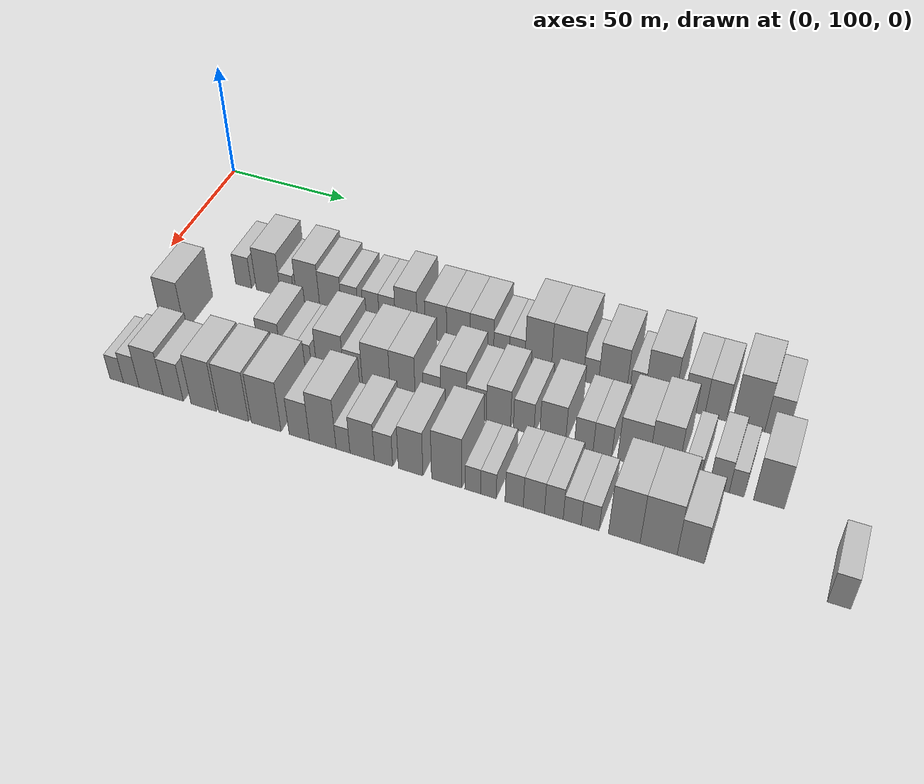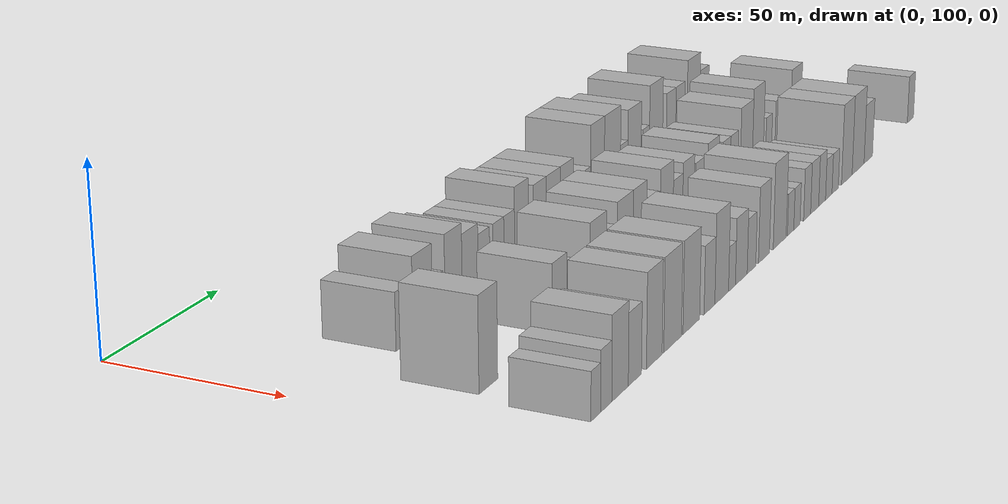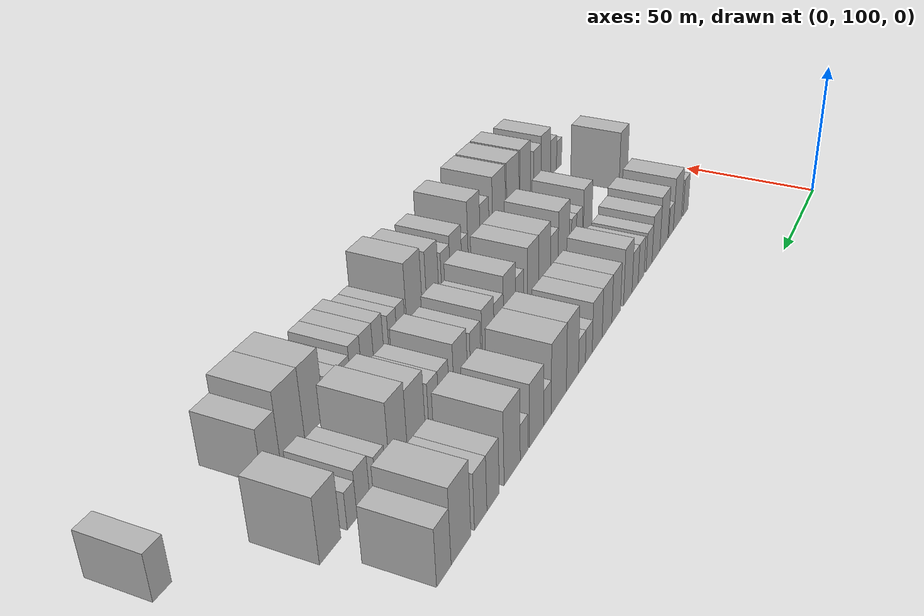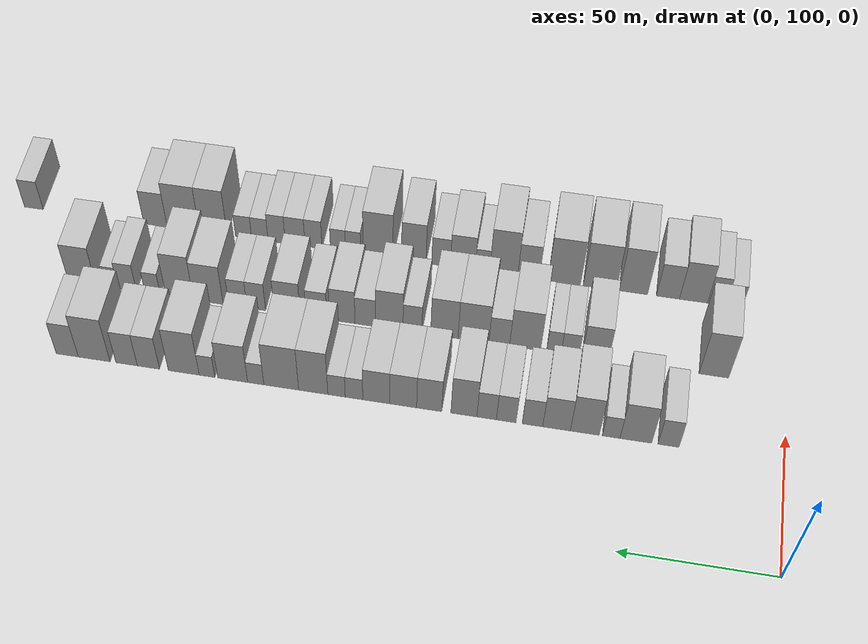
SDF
<sdf version="1.6">
 <world name="default">
  <model name="building_47">
   <static>1</static>
   <pose>50.0000 136.7579 0 0.000000 0.000000 0.000000</pose>
   <link name="link">
    <pose>0 0 7.50 0 0 0</pose>
    <collision name="collision"><geometry><box><size>20.0000 6.6616 15.0000</size></box></geometry></collision>
    <visual name="visual">
     <cast_shadows>0</cast_shadows>
     <geometry><box><size>20.0000 6.6616 15.0000</size></box></geometry>
     <material>
      <script>
       <uri>model://HANNAS_wall/materials/scripts</uri>
       <uri>model://HANNAS_wall/materials/textures</uri>
       <name>vrc/HANNAS_wall</name>
      </script>
     </material>
    </visual>
   </link>
  </model>
  <model name="building_48">
   <static>1</static>
   <pose>50.0000 147.1466 0 0.000000 0.000000 0.000000</pose>
   <link name="link">
    <pose>0 0 10.50 0 0 0</pose>
    <collision name="collision"><geometry><box><size>20.0000 10.1159 21.0000</size></box></geometry></collision>
    <visual name="visual">
     <cast_shadows>0</cast_shadows>
     <geometry><box><size>20.0000 10.1159 21.0000</size></box></geometry>
     <material>
      <script>
       <uri>model://HANNAS_wall/materials/scripts</uri>
       <uri>model://HANNAS_wall/materials/textures</uri>
       <name>vrc/HANNAS_wall</name>
      </script>
     </material>
    </visual>
   </link>
  </model>
  <model name="building_49">
   <static>1</static>
   <pose>50.0000 155.0259 0 0.000000 0.000000 0.000000</pose>
   <link name="link">
    <pose>0 0 6.00 0 0 0</pose>
    <collision name="collision"><geometry><box><size>20.0000 5.6427 12.0000</size></box></geometry></collision>
    <visual name="visual">
     <cast_shadows>0</cast_shadows>
     <geometry><box><size>20.0000 5.6427 12.0000</size></box></geometry>
     <material>
      <script>
       <uri>model://HANNAS_wall/materials/scripts</uri>
       <uri>model://HANNAS_wall/materials/textures</uri>
       <name>vrc/HANNAS_wall</name>
      </script>
     </material>
    </visual>
   </link>
  </model>
  <model name="building_50">
   <static>1</static>
   <pose>50.0000 163.5121 0 0.000000 0.000000 0.000000</pose>
   <link name="link">
    <pose>0 0 10.50 0 0 0</pose>
    <collision name="collision"><geometry><box><size>20.0000 9.3296 21.0000</size></box></geometry></collision>
    <visual name="visual">
     <cast_shadows>0</cast_shadows>
     <geometry><box><size>20.0000 9.3296 21.0000</size></box></geometry>
     <material>
      <script>
       <uri>model://HANNAS_wall/materials/scripts</uri>
       <uri>model://HANNAS_wall/materials/textures</uri>
       <name>vrc/HANNAS_wall</name>
      </script>
     </material>
    </visual>
   </link>
  </model>
  <model name="building_51">
   <static>1</static>
   <pose>50.0000 172.6327 0 0.000000 0.000000 0.000000</pose>
   <link name="link">
    <pose>0 0 9.00 0 0 0</pose>
    <collision name="collision"><geometry><box><size>20.0000 8.9117 18.0000</size></box></geometry></collision>
    <visual name="visual">
     <cast_shadows>0</cast_shadows>
     <geometry><box><size>20.0000 8.9117 18.0000</size></box></geometry>
     <material>
      <script>
       <uri>model://HANNAS_wall/materials/scripts</uri>
       <uri>model://HANNAS_wall/materials/textures</uri>
       <name>vrc/HANNAS_wall</name>
      </script>
     </material>
    </visual>
   </link>
  </model>
  <model name="building_52">
   <static>1</static>
   <pose>50.0000 180.3997 0 0.000000 0.000000 0.000000</pose>
   <link name="link">
    <pose>0 0 7.50 0 0 0</pose>
    <collision name="collision"><geometry><box><size>20.0000 6.6225 15.0000</size></box></geometry></collision>
    <visual name="visual">
     <cast_shadows>0</cast_shadows>
     <geometry><box><size>20.0000 6.6225 15.0000</size></box></geometry>
     <material>
      <script>
       <uri>model://HANNAS_wall/materials/scripts</uri>
       <uri>model://HANNAS_wall/materials/textures</uri>
       <name>vrc/HANNAS_wall</name>
      </script>
     </material>
    </visual>
   </link>
  </model>
  <model name="building_53">
   <static>1</static>
   <pose>50.0000 188.8815 0 0.000000 0.000000 0.000000</pose>
   <link name="link">
    <pose>0 0 7.50 0 0 0</pose>
    <collision name="collision"><geometry><box><size>20.0000 6.3411 15.0000</size></box></geometry></collision>
    <visual name="visual">
     <cast_shadows>0</cast_shadows>
     <geometry><box><size>20.0000 6.3411 15.0000</size></box></geometry>
     <material>
      <script>
       <uri>model://HANNAS_wall/materials/scripts</uri>
       <uri>model://HANNAS_wall/materials/textures</uri>
       <name>vrc/HANNAS_wall</name>
      </script>
     </material>
    </visual>
   </link>
  </model>
  <model name="building_54">
   <static>1</static>
   <pose>50.0000 195.2302 0 0.000000 0.000000 0.000000</pose>
   <link name="link">
    <pose>0 0 7.50 0 0 0</pose>
    <collision name="collision"><geometry><box><size>20.0000 6.3562 15.0000</size></box></geometry></collision>
    <visual name="visual">
     <cast_shadows>0</cast_shadows>
     <geometry><box><size>20.0000 6.3562 15.0000</size></box></geometry>
     <material>
      <script>
       <uri>model://HANNAS_wall/materials/scripts</uri>
       <uri>model://HANNAS_wall/materials/textures</uri>
       <name>vrc/HANNAS_wall</name>
      </script>
     </material>
    </visual>
   </link>
  </model>
  <model name="building_55">
   <static>1</static>
   <pose>50.0000 202.6620 0 0.000000 0.000000 0.000000</pose>
   <link name="link">
    <pose>0 0 10.50 0 0 0</pose>
    <collision name="collision"><geometry><box><size>20.0000 8.5074 21.0000</size></box></geometry></collision>
    <visual name="visual">
     <cast_shadows>0</cast_shadows>
     <geometry><box><size>20.0000 8.5074 21.0000</size></box></geometry>
     <material>
      <script>
       <uri>model://HANNAS_wall/materials/scripts</uri>
       <uri>model://HANNAS_wall/materials/textures</uri>
       <name>vrc/HANNAS_wall</name>
      </script>
     </material>
    </visual>
   </link>
  </model>
  <model name="building_56">
   <static>1</static>
   <pose>50.0000 214.0242 0 0.000000 0.000000 0.000000</pose>
   <link name="link">
    <pose>0 0 9.00 0 0 0</pose>
    <collision name="collision"><geometry><box><size>20.0000 8.2172 18.0000</size></box></geometry></collision>
    <visual name="visual">
     <cast_shadows>0</cast_shadows>
     <geometry><box><size>20.0000 8.2172 18.0000</size></box></geometry>
     <material>
      <script>
       <uri>model://HANNAS_wall/materials/scripts</uri>
       <uri>model://HANNAS_wall/materials/textures</uri>
       <name>vrc/HANNAS_wall</name>
      </script>
     </material>
    </visual>
   </link>
  </model>
  <model name="building_57">
   <static>1</static>
   <pose>50.0000 222.5899 0 0.000000 0.000000 0.000000</pose>
   <link name="link">
    <pose>0 0 9.00 0 0 0</pose>
    <collision name="collision"><geometry><box><size>20.0000 8.9143 18.0000</size></box></geometry></collision>
    <visual name="visual">
     <cast_shadows>0</cast_shadows>
     <geometry><box><size>20.0000 8.9143 18.0000</size></box></geometry>
     <material>
      <script>
       <uri>model://HANNAS_wall/materials/scripts</uri>
       <uri>model://HANNAS_wall/materials/textures</uri>
       <name>vrc/HANNAS_wall</name>
      </script>
     </material>
    </visual>
   </link>
  </model>
  <model name="building_58">
   <static>1</static>
   <pose>50.0000 231.4520 0 0.000000 0.000000 0.000000</pose>
   <link name="link">
    <pose>0 0 9.00 0 0 0</pose>
    <collision name="collision"><geometry><box><size>20.0000 8.8098 18.0000</size></box></geometry></collision>
    <visual name="visual">
     <cast_shadows>0</cast_shadows>
     <geometry><box><size>20.0000 8.8098 18.0000</size></box></geometry>
     <material>
      <script>
       <uri>model://HANNAS_wall/materials/scripts</uri>
       <uri>model://HANNAS_wall/materials/textures</uri>
       <name>vrc/HANNAS_wall</name>
      </script>
     </material>
    </visual>
   </link>
  </model>
  <model name="building_59">
   <static>1</static>
   <pose>50.0000 238.7716 0 0.000000 0.000000 0.000000</pose>
   <link name="link">
    <pose>0 0 6.00 0 0 0</pose>
    <collision name="collision"><geometry><box><size>20.0000 5.8293 12.0000</size></box></geometry></collision>
    <visual name="visual">
     <cast_shadows>0</cast_shadows>
     <geometry><box><size>20.0000 5.8293 12.0000</size></box></geometry>
     <material>
      <script>
       <uri>model://HANNAS_wall/materials/scripts</uri>
       <uri>model://HANNAS_wall/materials/textures</uri>
       <name>vrc/HANNAS_wall</name>
      </script>
     </material>
    </visual>
   </link>
  </model>
  <model name="building_60">
   <static>1</static>
   <pose>50.0000 244.5760 0 0.000000 0.000000 0.000000</pose>
   <link name="link">
    <pose>0 0 6.00 0 0 0</pose>
    <collision name="collision"><geometry><box><size>20.0000 5.7796 12.0000</size></box></geometry></collision>
    <visual name="visual">
     <cast_shadows>0</cast_shadows>
     <geometry><box><size>20.0000 5.7796 12.0000</size></box></geometry>
     <material>
      <script>
       <uri>model://HANNAS_wall/materials/scripts</uri>
       <uri>model://HANNAS_wall/materials/textures</uri>
       <name>vrc/HANNAS_wall</name>
      </script>
     </material>
    </visual>
   </link>
  </model>
  <model name="building_61">
   <static>1</static>
   <pose>50.0000 252.3207 0 0.000000 0.000000 0.000000</pose>
   <link name="link">
    <pose>0 0 12.00 0 0 0</pose>
    <collision name="collision"><geometry><box><size>20.0000 9.7096 24.0000</size></box></geometry></collision>
    <visual name="visual">
     <cast_shadows>0</cast_shadows>
     <geometry><box><size>20.0000 9.7096 24.0000</size></box></geometry>
     <material>
      <script>
       <uri>model://HANNAS_wall/materials/scripts</uri>
       <uri>model://HANNAS_wall/materials/textures</uri>
       <name>vrc/HANNAS_wall</name>
      </script>
     </material>
    </visual>
   </link>
  </model>
  <model name="building_62">
   <static>1</static>
   <pose>50.0000 262.9790 0 0.000000 0.000000 0.000000</pose>
   <link name="link">
    <pose>0 0 12.00 0 0 0</pose>
    <collision name="collision"><geometry><box><size>20.0000 11.6071 24.0000</size></box></geometry></collision>
    <visual name="visual">
     <cast_shadows>0</cast_shadows>
     <geometry><box><size>20.0000 11.6071 24.0000</size></box></geometry>
     <material>
      <script>
       <uri>model://HANNAS_wall/materials/scripts</uri>
       <uri>model://HANNAS_wall/materials/textures</uri>
       <name>vrc/HANNAS_wall</name>
      </script>
     </material>
    </visual>
   </link>
  </model>
  <model name="building_63">
   <static>1</static>
   <pose>50.0000 271.5103 0 0.000000 0.000000 0.000000</pose>
   <link name="link">
    <pose>0 0 6.00 0 0 0</pose>
    <collision name="collision"><geometry><box><size>20.0000 5.4555 12.0000</size></box></geometry></collision>
    <visual name="visual">
     <cast_shadows>0</cast_shadows>
     <geometry><box><size>20.0000 5.4555 12.0000</size></box></geometry>
     <material>
      <script>
       <uri>model://HANNAS_wall/materials/scripts</uri>
       <uri>model://HANNAS_wall/materials/textures</uri>
       <name>vrc/HANNAS_wall</name>
      </script>
     </material>
    </visual>
   </link>
  </model>
  <model name="building_64">
   <static>1</static>
   <pose>50.0000 279.2497 0 0.000000 0.000000 0.000000</pose>
   <link name="link">
    <pose>0 0 10.50 0 0 0</pose>
    <collision name="collision"><geometry><box><size>20.0000 10.0232 21.0000</size></box></geometry></collision>
    <visual name="visual">
     <cast_shadows>0</cast_shadows>
     <geometry><box><size>20.0000 10.0232 21.0000</size></box></geometry>
     <material>
      <script>
       <uri>model://HANNAS_wall/materials/scripts</uri>
       <uri>model://HANNAS_wall/materials/textures</uri>
       <name>vrc/HANNAS_wall</name>
      </script>
     </material>
    </visual>
   </link>
  </model>
  <model name="building_65">
   <static>1</static>
   <pose>50.0000 287.9108 0 0.000000 0.000000 0.000000</pose>
   <link name="link">
    <pose>0 0 6.00 0 0 0</pose>
    <collision name="collision"><geometry><box><size>20.0000 5.2991 12.0000</size></box></geometry></collision>
    <visual name="visual">
     <cast_shadows>0</cast_shadows>
     <geometry><box><size>20.0000 5.2991 12.0000</size></box></geometry>
     <material>
      <script>
       <uri>model://HANNAS_wall/materials/scripts</uri>
       <uri>model://HANNAS_wall/materials/textures</uri>
       <name>vrc/HANNAS_wall</name>
      </script>
     </material>
    </visual>
   </link>
  </model>
  <model name="building_66">
   <static>1</static>
   <pose>50.0000 295.7887 0 0.000000 0.000000 0.000000</pose>
   <link name="link">
    <pose>0 0 12.00 0 0 0</pose>
    <collision name="collision"><geometry><box><size>20.0000 10.4567 24.0000</size></box></geometry></collision>
    <visual name="visual">
     <cast_shadows>0</cast_shadows>
     <geometry><box><size>20.0000 10.4567 24.0000</size></box></geometry>
     <material>
      <script>
       <uri>model://HANNAS_wall/materials/scripts</uri>
       <uri>model://HANNAS_wall/materials/textures</uri>
       <name>vrc/HANNAS_wall</name>
      </script>
     </material>
    </visual>
   </link>
  </model>
  <model name="building_67">
   <static>1</static>
   <pose>50.0000 307.7833 0 0.000000 0.000000 0.000000</pose>
   <link name="link">
    <pose>0 0 9.00 0 0 0</pose>
    <collision name="collision"><geometry><box><size>20.0000 7.5326 18.0000</size></box></geometry></collision>
    <visual name="visual">
     <cast_shadows>0</cast_shadows>
     <geometry><box><size>20.0000 7.5326 18.0000</size></box></geometry>
     <material>
      <script>
       <uri>model://HANNAS_wall/materials/scripts</uri>
       <uri>model://HANNAS_wall/materials/textures</uri>
       <name>vrc/HANNAS_wall</name>
      </script>
     </material>
    </visual>
   </link>
  </model>
  <model name="building_68">
   <static>1</static>
   <pose>50.0000 315.2101 0 0.000000 0.000000 0.000000</pose>
   <link name="link">
    <pose>0 0 9.00 0 0 0</pose>
    <collision name="collision"><geometry><box><size>20.0000 7.3210 18.0000</size></box></geometry></collision>
    <visual name="visual">
     <cast_shadows>0</cast_shadows>
     <geometry><box><size>20.0000 7.3210 18.0000</size></box></geometry>
     <material>
      <script>
       <uri>model://HANNAS_wall/materials/scripts</uri>
       <uri>model://HANNAS_wall/materials/textures</uri>
       <name>vrc/HANNAS_wall</name>
      </script>
     </material>
    </visual>
   </link>
  </model>
  <model name="building_69">
   <static>1</static>
   <pose>50.0000 326.3032 0 0.000000 0.000000 0.000000</pose>
   <link name="link">
    <pose>0 0 12.00 0 0 0</pose>
    <collision name="collision"><geometry><box><size>20.0000 10.8651 24.0000</size></box></geometry></collision>
    <visual name="visual">
     <cast_shadows>0</cast_shadows>
     <geometry><box><size>20.0000 10.8651 24.0000</size></box></geometry>
     <material>
      <script>
       <uri>model://HANNAS_wall/materials/scripts</uri>
       <uri>model://HANNAS_wall/materials/textures</uri>
       <name>vrc/HANNAS_wall</name>
      </script>
     </material>
    </visual>
   </link>
  </model>
  <model name="building_70">
   <static>1</static>
   <pose>50.0000 335.5341 0 0.000000 0.000000 0.000000</pose>
   <link name="link">
    <pose>0 0 9.00 0 0 0</pose>
    <collision name="collision"><geometry><box><size>20.0000 7.5967 18.0000</size></box></geometry></collision>
    <visual name="visual">
     <cast_shadows>0</cast_shadows>
     <geometry><box><size>20.0000 7.5967 18.0000</size></box></geometry>
     <material>
      <script>
       <uri>model://HANNAS_wall/materials/scripts</uri>
       <uri>model://HANNAS_wall/materials/textures</uri>
       <name>vrc/HANNAS_wall</name>
      </script>
     </material>
    </visual>
   </link>
  </model>
  <model name="building_118">
   <static>1</static>
   <pose>79.0000 123.8939 0 0.000000 0.000000 0.000000</pose>
   <link name="link">
    <pose>0 0 12.00 0 0 0</pose>
    <collision name="collision"><geometry><box><size>20.0000 9.6974 24.0000</size></box></geometry></collision>
    <visual name="visual">
     <cast_shadows>0</cast_shadows>
     <geometry><box><size>20.0000 9.6974 24.0000</size></box></geometry>
     <material>
      <script>
       <uri>model://HANNAS_wall/materials/scripts</uri>
       <uri>model://HANNAS_wall/materials/textures</uri>
       <name>vrc/HANNAS_wall</name>
      </script>
     </material>
    </visual>
   </link>
  </model>
  <model name="building_119">
   <static>1</static>
   <pose>79.0000 162.9562 0 0.000000 0.000000 0.000000</pose>
   <link name="link">
    <pose>0 0 9.00 0 0 0</pose>
    <collision name="collision"><geometry><box><size>20.0000 8.8091 18.0000</size></box></geometry></collision>
    <visual name="visual">
     <cast_shadows>0</cast_shadows>
     <geometry><box><size>20.0000 8.8091 18.0000</size></box></geometry>
     <material>
      <script>
       <uri>model://HANNAS_wall/materials/scripts</uri>
       <uri>model://HANNAS_wall/materials/textures</uri>
       <name>vrc/HANNAS_wall</name>
      </script>
     </material>
    </visual>
   </link>
  </model>
  <model name="building_120">
   <static>1</static>
   <pose>79.0000 171.3367 0 0.000000 0.000000 0.000000</pose>
   <link name="link">
    <pose>0 0 6.00 0 0 0</pose>
    <collision name="collision"><geometry><box><size>20.0000 5.9518 12.0000</size></box></geometry></collision>
    <visual name="visual">
     <cast_shadows>0</cast_shadows>
     <geometry><box><size>20.0000 5.9518 12.0000</size></box></geometry>
     <material>
      <script>
       <uri>model://HANNAS_wall/materials/scripts</uri>
       <uri>model://HANNAS_wall/materials/textures</uri>
       <name>vrc/HANNAS_wall</name>
      </script>
     </material>
    </visual>
   </link>
  </model>
  <model name="building_121">
   <static>1</static>
   <pose>79.0000 176.7392 0 0.000000 0.000000 0.000000</pose>
   <link name="link">
    <pose>0 0 6.00 0 0 0</pose>
    <collision name="collision"><geometry><box><size>20.0000 4.8533 12.0000</size></box></geometry></collision>
    <visual name="visual">
     <cast_shadows>0</cast_shadows>
     <geometry><box><size>20.0000 4.8533 12.0000</size></box></geometry>
     <material>
      <script>
       <uri>model://HANNAS_wall/materials/scripts</uri>
       <uri>model://HANNAS_wall/materials/textures</uri>
       <name>vrc/HANNAS_wall</name>
      </script>
     </material>
    </visual>
   </link>
  </model>
  <model name="building_122">
   <static>1</static>
   <pose>79.0000 186.3503 0 0.000000 0.000000 0.000000</pose>
   <link name="link">
    <pose>0 0 10.50 0 0 0</pose>
    <collision name="collision"><geometry><box><size>20.0000 10.3689 21.0000</size></box></geometry></collision>
    <visual name="visual">
     <cast_shadows>0</cast_shadows>
     <geometry><box><size>20.0000 10.3689 21.0000</size></box></geometry>
     <material>
      <script>
       <uri>model://HANNAS_wall/materials/scripts</uri>
       <uri>model://HANNAS_wall/materials/textures</uri>
       <name>vrc/HANNAS_wall</name>
      </script>
     </material>
    </visual>
   </link>
  </model>
  <model name="building_123">
   <static>1</static>
   <pose>79.0000 195.0056 0 0.000000 0.000000 0.000000</pose>
   <link name="link">
    <pose>0 0 7.50 0 0 0</pose>
    <collision name="collision"><geometry><box><size>20.0000 6.9418 15.0000</size></box></geometry></collision>
    <visual name="visual">
     <cast_shadows>0</cast_shadows>
     <geometry><box><size>20.0000 6.9418 15.0000</size></box></geometry>
     <material>
      <script>
       <uri>model://HANNAS_wall/materials/scripts</uri>
       <uri>model://HANNAS_wall/materials/textures</uri>
       <name>vrc/HANNAS_wall</name>
      </script>
     </material>
    </visual>
   </link>
  </model>
  <model name="building_124">
   <static>1</static>
   <pose>79.0000 203.6874 0 0.000000 0.000000 0.000000</pose>
   <link name="link">
    <pose>0 0 10.50 0 0 0</pose>
    <collision name="collision"><geometry><box><size>20.0000 10.4217 21.0000</size></box></geometry></collision>
    <visual name="visual">
     <cast_shadows>0</cast_shadows>
     <geometry><box><size>20.0000 10.4217 21.0000</size></box></geometry>
     <material>
      <script>
       <uri>model://HANNAS_wall/materials/scripts</uri>
       <uri>model://HANNAS_wall/materials/textures</uri>
       <name>vrc/HANNAS_wall</name>
      </script>
     </material>
    </visual>
   </link>
  </model>
  <model name="building_125">
   <static>1</static>
   <pose>79.0000 213.5264 0 0.000000 0.000000 0.000000</pose>
   <link name="link">
    <pose>0 0 10.50 0 0 0</pose>
    <collision name="collision"><geometry><box><size>20.0000 9.2563 21.0000</size></box></geometry></collision>
    <visual name="visual">
     <cast_shadows>0</cast_shadows>
     <geometry><box><size>20.0000 9.2563 21.0000</size></box></geometry>
     <material>
      <script>
       <uri>model://HANNAS_wall/materials/scripts</uri>
       <uri>model://HANNAS_wall/materials/textures</uri>
       <name>vrc/HANNAS_wall</name>
      </script>
     </material>
    </visual>
   </link>
  </model>
  <model name="building_126">
   <static>1</static>
   <pose>79.0000 224.3604 0 0.000000 0.000000 0.000000</pose>
   <link name="link">
    <pose>0 0 7.50 0 0 0</pose>
    <collision name="collision"><geometry><box><size>20.0000 6.4118 15.0000</size></box></geometry></collision>
    <visual name="visual">
     <cast_shadows>0</cast_shadows>
     <geometry><box><size>20.0000 6.4118 15.0000</size></box></geometry>
     <material>
      <script>
       <uri>model://HANNAS_wall/materials/scripts</uri>
       <uri>model://HANNAS_wall/materials/textures</uri>
       <name>vrc/HANNAS_wall</name>
      </script>
     </material>
    </visual>
   </link>
  </model>
  <model name="building_127">
   <static>1</static>
   <pose>79.0000 232.2244 0 0.000000 0.000000 0.000000</pose>
   <link name="link">
    <pose>0 0 10.50 0 0 0</pose>
    <collision name="collision"><geometry><box><size>20.0000 9.3161 21.0000</size></box></geometry></collision>
    <visual name="visual">
     <cast_shadows>0</cast_shadows>
     <geometry><box><size>20.0000 9.3161 21.0000</size></box></geometry>
     <material>
      <script>
       <uri>model://HANNAS_wall/materials/scripts</uri>
       <uri>model://HANNAS_wall/materials/textures</uri>
       <name>vrc/HANNAS_wall</name>
      </script>
     </material>
    </visual>
   </link>
  </model>
  <model name="building_128">
   <static>1</static>
   <pose>79.0000 240.3911 0 0.000000 0.000000 0.000000</pose>
   <link name="link">
    <pose>0 0 7.50 0 0 0</pose>
    <collision name="collision"><geometry><box><size>20.0000 7.0172 15.0000</size></box></geometry></collision>
    <visual name="visual">
     <cast_shadows>0</cast_shadows>
     <geometry><box><size>20.0000 7.0172 15.0000</size></box></geometry>
     <material>
      <script>
       <uri>model://HANNAS_wall/materials/scripts</uri>
       <uri>model://HANNAS_wall/materials/textures</uri>
       <name>vrc/HANNAS_wall</name>
      </script>
     </material>
    </visual>
   </link>
  </model>
  <model name="building_129">
   <static>1</static>
   <pose>79.0000 248.2048 0 0.000000 0.000000 0.000000</pose>
   <link name="link">
    <pose>0 0 9.00 0 0 0</pose>
    <collision name="collision"><geometry><box><size>20.0000 8.6101 18.0000</size></box></geometry></collision>
    <visual name="visual">
     <cast_shadows>0</cast_shadows>
     <geometry><box><size>20.0000 8.6101 18.0000</size></box></geometry>
     <material>
      <script>
       <uri>model://HANNAS_wall/materials/scripts</uri>
       <uri>model://HANNAS_wall/materials/textures</uri>
       <name>vrc/HANNAS_wall</name>
      </script>
     </material>
    </visual>
   </link>
  </model>
  <model name="building_130">
   <static>1</static>
   <pose>79.0000 257.1111 0 0.000000 0.000000 0.000000</pose>
   <link name="link">
    <pose>0 0 7.50 0 0 0</pose>
    <collision name="collision"><geometry><box><size>20.0000 7.2026 15.0000</size></box></geometry></collision>
    <visual name="visual">
     <cast_shadows>0</cast_shadows>
     <geometry><box><size>20.0000 7.2026 15.0000</size></box></geometry>
     <material>
      <script>
       <uri>model://HANNAS_wall/materials/scripts</uri>
       <uri>model://HANNAS_wall/materials/textures</uri>
       <name>vrc/HANNAS_wall</name>
      </script>
     </material>
    </visual>
   </link>
  </model>
  <model name="building_131">
   <static>1</static>
   <pose>79.0000 267.1938 0 0.000000 0.000000 0.000000</pose>
   <link name="link">
    <pose>0 0 9.00 0 0 0</pose>
    <collision name="collision"><geometry><box><size>20.0000 8.9627 18.0000</size></box></geometry></collision>
    <visual name="visual">
     <cast_shadows>0</cast_shadows>
     <geometry><box><size>20.0000 8.9627 18.0000</size></box></geometry>
     <material>
      <script>
       <uri>model://HANNAS_wall/materials/scripts</uri>
       <uri>model://HANNAS_wall/materials/textures</uri>
       <name>vrc/HANNAS_wall</name>
      </script>
     </material>
    </visual>
   </link>
  </model>
  <model name="building_132">
   <static>1</static>
   <pose>79.0000 277.8977 0 0.000000 0.000000 0.000000</pose>
   <link name="link">
    <pose>0 0 7.50 0 0 0</pose>
    <collision name="collision"><geometry><box><size>20.0000 6.4452 15.0000</size></box></geometry></collision>
    <visual name="visual">
     <cast_shadows>0</cast_shadows>
     <geometry><box><size>20.0000 6.4452 15.0000</size></box></geometry>
     <material>
      <script>
       <uri>model://HANNAS_wall/materials/scripts</uri>
       <uri>model://HANNAS_wall/materials/textures</uri>
       <name>vrc/HANNAS_wall</name>
      </script>
     </material>
    </visual>
   </link>
  </model>
  <model name="building_133">
   <static>1</static>
   <pose>79.0000 284.2714 0 0.000000 0.000000 0.000000</pose>
   <link name="link">
    <pose>0 0 7.50 0 0 0</pose>
    <collision name="collision"><geometry><box><size>20.0000 6.3021 15.0000</size></box></geometry></collision>
    <visual name="visual">
     <cast_shadows>0</cast_shadows>
     <geometry><box><size>20.0000 6.3021 15.0000</size></box></geometry>
     <material>
      <script>
       <uri>model://HANNAS_wall/materials/scripts</uri>
       <uri>model://HANNAS_wall/materials/textures</uri>
       <name>vrc/HANNAS_wall</name>
      </script>
     </material>
    </visual>
   </link>
  </model>
  <model name="building_134">
   <static>1</static>
   <pose>79.0000 294.5738 0 0.000000 0.000000 0.000000</pose>
   <link name="link">
    <pose>0 0 10.50 0 0 0</pose>
    <collision name="collision"><geometry><box><size>20.0000 10.3027 21.0000</size></box></geometry></collision>
    <visual name="visual">
     <cast_shadows>0</cast_shadows>
     <geometry><box><size>20.0000 10.3027 21.0000</size></box></geometry>
     <material>
      <script>
       <uri>model://HANNAS_wall/materials/scripts</uri>
       <uri>model://HANNAS_wall/materials/textures</uri>
       <name>vrc/HANNAS_wall</name>
      </script>
     </material>
    </visual>
   </link>
  </model>
  <model name="building_135">
   <static>1</static>
   <pose>79.0000 304.5640 0 0.000000 0.000000 0.000000</pose>
   <link name="link">
    <pose>0 0 12.00 0 0 0</pose>
    <collision name="collision"><geometry><box><size>20.0000 9.6777 24.0000</size></box></geometry></collision>
    <visual name="visual">
     <cast_shadows>0</cast_shadows>
     <geometry><box><size>20.0000 9.6777 24.0000</size></box></geometry>
     <material>
      <script>
       <uri>model://HANNAS_wall/materials/scripts</uri>
       <uri>model://HANNAS_wall/materials/textures</uri>
       <name>vrc/HANNAS_wall</name>
      </script>
     </material>
    </visual>
   </link>
  </model>
  <model name="building_136">
   <static>1</static>
   <pose>79.0000 314.0765 0 0.000000 0.000000 0.000000</pose>
   <link name="link">
    <pose>0 0 6.00 0 0 0</pose>
    <collision name="collision"><geometry><box><size>20.0000 5.3471 12.0000</size></box></geometry></collision>
    <visual name="visual">
     <cast_shadows>0</cast_shadows>
     <geometry><box><size>20.0000 5.3471 12.0000</size></box></geometry>
     <material>
      <script>
       <uri>model://HANNAS_wall/materials/scripts</uri>
       <uri>model://HANNAS_wall/materials/textures</uri>
       <name>vrc/HANNAS_wall</name>
      </script>
     </material>
    </visual>
   </link>
  </model>
  <model name="building_137">
   <static>1</static>
   <pose>79.0000 322.9853 0 0.000000 0.000000 0.000000</pose>
   <link name="link">
    <pose>0 0 7.50 0 0 0</pose>
    <collision name="collision"><geometry><box><size>20.0000 6.4706 15.0000</size></box></geometry></collision>
    <visual name="visual">
     <cast_shadows>0</cast_shadows>
     <geometry><box><size>20.0000 6.4706 15.0000</size></box></geometry>
     <material>
      <script>
       <uri>model://HANNAS_wall/materials/scripts</uri>
       <uri>model://HANNAS_wall/materials/textures</uri>
       <name>vrc/HANNAS_wall</name>
      </script>
     </material>
    </visual>
   </link>
  </model>
  <model name="building_138">
   <static>1</static>
   <pose>79.0000 328.6223 0 0.000000 0.000000 0.000000</pose>
   <link name="link">
    <pose>0 0 6.00 0 0 0</pose>
    <collision name="collision"><geometry><box><size>20.0000 4.8034 12.0000</size></box></geometry></collision>
    <visual name="visual">
     <cast_shadows>0</cast_shadows>
     <geometry><box><size>20.0000 4.8034 12.0000</size></box></geometry>
     <material>
      <script>
       <uri>model://HANNAS_wall/materials/scripts</uri>
       <uri>model://HANNAS_wall/materials/textures</uri>
       <name>vrc/HANNAS_wall</name>
      </script>
     </material>
    </visual>
   </link>
  </model>
  <model name="building_139">
   <static>1</static>
   <pose>79.0000 338.9257 0 0.000000 0.000000 0.000000</pose>
   <link name="link">
    <pose>0 0 10.50 0 0 0</pose>
    <collision name="collision"><geometry><box><size>20.0000 9.8033 21.0000</size></box></geometry></collision>
    <visual name="visual">
     <cast_shadows>0</cast_shadows>
     <geometry><box><size>20.0000 9.8033 21.0000</size></box></geometry>
     <material>
      <script>
       <uri>model://HANNAS_wall/materials/scripts</uri>
       <uri>model://HANNAS_wall/materials/textures</uri>
       <name>vrc/HANNAS_wall</name>
      </script>
     </material>
    </visual>
   </link>
  </model>
  <model name="building_189">
   <static>1</static>
   <pose>108.0000 118.5945 0 0.000000 0.000000 0.000000</pose>
   <link name="link">
    <pose>0 0 6.00 0 0 0</pose>
    <collision name="collision"><geometry><box><size>20.0000 5.4076 12.0000</size></box></geometry></collision>
    <visual name="visual">
     <cast_shadows>0</cast_shadows>
     <geometry><box><size>20.0000 5.4076 12.0000</size></box></geometry>
     <material>
      <script>
       <uri>model://HANNAS_wall/materials/scripts</uri>
       <uri>model://HANNAS_wall/materials/textures</uri>
       <name>vrc/HANNAS_wall</name>
      </script>
     </material>
    </visual>
   </link>
  </model>
  <model name="building_190">
   <static>1</static>
   <pose>108.0000 124.4137 0 0.000000 0.000000 0.000000</pose>
   <link name="link">
    <pose>0 0 7.50 0 0 0</pose>
    <collision name="collision"><geometry><box><size>20.0000 6.2308 15.0000</size></box></geometry></collision>
    <visual name="visual">
     <cast_shadows>0</cast_shadows>
     <geometry><box><size>20.0000 6.2308 15.0000</size></box></geometry>
     <material>
      <script>
       <uri>model://HANNAS_wall/materials/scripts</uri>
       <uri>model://HANNAS_wall/materials/textures</uri>
       <name>vrc/HANNAS_wall</name>
      </script>
     </material>
    </visual>
   </link>
  </model>
  <model name="building_191">
   <static>1</static>
   <pose>108.0000 132.2951 0 0.000000 0.000000 0.000000</pose>
   <link name="link">
    <pose>0 0 10.50 0 0 0</pose>
    <collision name="collision"><geometry><box><size>20.0000 9.5322 21.0000</size></box></geometry></collision>
    <visual name="visual">
     <cast_shadows>0</cast_shadows>
     <geometry><box><size>20.0000 9.5322 21.0000</size></box></geometry>
     <material>
      <script>
       <uri>model://HANNAS_wall/materials/scripts</uri>
       <uri>model://HANNAS_wall/materials/textures</uri>
       <name>vrc/HANNAS_wall</name>
      </script>
     </material>
    </visual>
   </link>
  </model>
  <model name="building_192">
   <static>1</static>
   <pose>108.0000 140.9674 0 0.000000 0.000000 0.000000</pose>
   <link name="link">
    <pose>0 0 9.00 0 0 0</pose>
    <collision name="collision"><geometry><box><size>20.0000 7.8124 18.0000</size></box></geometry></collision>
    <visual name="visual">
     <cast_shadows>0</cast_shadows>
     <geometry><box><size>20.0000 7.8124 18.0000</size></box></geometry>
     <material>
      <script>
       <uri>model://HANNAS_wall/materials/scripts</uri>
       <uri>model://HANNAS_wall/materials/textures</uri>
       <name>vrc/HANNAS_wall</name>
      </script>
     </material>
    </visual>
   </link>
  </model>
  <model name="building_193">
   <static>1</static>
   <pose>108.0000 152.7223 0 0.000000 0.000000 0.000000</pose>
   <link name="link">
    <pose>0 0 12.00 0 0 0</pose>
    <collision name="collision"><geometry><box><size>20.0000 9.6974 24.0000</size></box></geometry></collision>
    <visual name="visual">
     <cast_shadows>0</cast_shadows>
     <geometry><box><size>20.0000 9.6974 24.0000</size></box></geometry>
     <material>
      <script>
       <uri>model://HANNAS_wall/materials/scripts</uri>
       <uri>model://HANNAS_wall/materials/textures</uri>
       <name>vrc/HANNAS_wall</name>
      </script>
     </material>
    </visual>
   </link>
  </model>
  <model name="building_194">
   <static>1</static>
   <pose>108.0000 164.2253 0 0.000000 0.000000 0.000000</pose>
   <link name="link">
    <pose>0 0 12.00 0 0 0</pose>
    <collision name="collision"><geometry><box><size>20.0000 11.3085 24.0000</size></box></geometry></collision>
    <visual name="visual">
     <cast_shadows>0</cast_shadows>
     <geometry><box><size>20.0000 11.3085 24.0000</size></box></geometry>
     <material>
      <script>
       <uri>model://HANNAS_wall/materials/scripts</uri>
       <uri>model://HANNAS_wall/materials/textures</uri>
       <name>vrc/HANNAS_wall</name>
      </script>
     </material>
    </visual>
   </link>
  </model>
  <model name="building_195">
   <static>1</static>
   <pose>108.0000 176.4474 0 0.000000 0.000000 0.000000</pose>
   <link name="link">
    <pose>0 0 12.00 0 0 0</pose>
    <collision name="collision"><geometry><box><size>20.0000 11.1357 24.0000</size></box></geometry></collision>
    <visual name="visual">
     <cast_shadows>0</cast_shadows>
     <geometry><box><size>20.0000 11.1357 24.0000</size></box></geometry>
     <material>
      <script>
       <uri>model://HANNAS_wall/materials/scripts</uri>
       <uri>model://HANNAS_wall/materials/textures</uri>
       <name>vrc/HANNAS_wall</name>
      </script>
     </material>
    </visual>
   </link>
  </model>
  <model name="building_196">
   <static>1</static>
   <pose>108.0000 188.7423 0 0.000000 0.000000 0.000000</pose>
   <link name="link">
    <pose>0 0 9.00 0 0 0</pose>
    <collision name="collision"><geometry><box><size>20.0000 7.4541 18.0000</size></box></geometry></collision>
    <visual name="visual">
     <cast_shadows>0</cast_shadows>
     <geometry><box><size>20.0000 7.4541 18.0000</size></box></geometry>
     <material>
      <script>
       <uri>model://HANNAS_wall/materials/scripts</uri>
       <uri>model://HANNAS_wall/materials/textures</uri>
       <name>vrc/HANNAS_wall</name>
      </script>
     </material>
    </visual>
   </link>
  </model>
  <model name="building_197">
   <static>1</static>
   <pose>108.0000 197.3171 0 0.000000 0.000000 0.000000</pose>
   <link name="link">
    <pose>0 0 12.00 0 0 0</pose>
    <collision name="collision"><geometry><box><size>20.0000 9.6954 24.0000</size></box></geometry></collision>
    <visual name="visual">
     <cast_shadows>0</cast_shadows>
     <geometry><box><size>20.0000 9.6954 24.0000</size></box></geometry>
     <material>
      <script>
       <uri>model://HANNAS_wall/materials/scripts</uri>
       <uri>model://HANNAS_wall/materials/textures</uri>
       <name>vrc/HANNAS_wall</name>
      </script>
     </material>
    </visual>
   </link>
  </model>
  <model name="building_198">
   <static>1</static>
   <pose>108.0000 204.6777 0 0.000000 0.000000 0.000000</pose>
   <link name="link">
    <pose>0 0 6.00 0 0 0</pose>
    <collision name="collision"><geometry><box><size>20.0000 5.0259 12.0000</size></box></geometry></collision>
    <visual name="visual">
     <cast_shadows>0</cast_shadows>
     <geometry><box><size>20.0000 5.0259 12.0000</size></box></geometry>
     <material>
      <script>
       <uri>model://HANNAS_wall/materials/scripts</uri>
       <uri>model://HANNAS_wall/materials/textures</uri>
       <name>vrc/HANNAS_wall</name>
      </script>
     </material>
    </visual>
   </link>
  </model>
  <model name="building_199">
   <static>1</static>
   <pose>108.0000 211.5349 0 0.000000 0.000000 0.000000</pose>
   <link name="link">
    <pose>0 0 9.00 0 0 0</pose>
    <collision name="collision"><geometry><box><size>20.0000 8.6886 18.0000</size></box></geometry></collision>
    <visual name="visual">
     <cast_shadows>0</cast_shadows>
     <geometry><box><size>20.0000 8.6886 18.0000</size></box></geometry>
     <material>
      <script>
       <uri>model://HANNAS_wall/materials/scripts</uri>
       <uri>model://HANNAS_wall/materials/textures</uri>
       <name>vrc/HANNAS_wall</name>
      </script>
     </material>
    </visual>
   </link>
  </model>
  <model name="building_200">
   <static>1</static>
   <pose>108.0000 219.1420 0 0.000000 0.000000 0.000000</pose>
   <link name="link">
    <pose>0 0 7.50 0 0 0</pose>
    <collision name="collision"><geometry><box><size>20.0000 6.5254 15.0000</size></box></geometry></collision>
    <visual name="visual">
     <cast_shadows>0</cast_shadows>
     <geometry><box><size>20.0000 6.5254 15.0000</size></box></geometry>
     <material>
      <script>
       <uri>model://HANNAS_wall/materials/scripts</uri>
       <uri>model://HANNAS_wall/materials/textures</uri>
       <name>vrc/HANNAS_wall</name>
      </script>
     </material>
    </visual>
   </link>
  </model>
  <model name="building_201">
   <static>1</static>
   <pose>108.0000 228.6919 0 0.000000 0.000000 0.000000</pose>
   <link name="link">
    <pose>0 0 10.50 0 0 0</pose>
    <collision name="collision"><geometry><box><size>20.0000 8.5745 21.0000</size></box></geometry></collision>
    <visual name="visual">
     <cast_shadows>0</cast_shadows>
     <geometry><box><size>20.0000 8.5745 21.0000</size></box></geometry>
     <material>
      <script>
       <uri>model://HANNAS_wall/materials/scripts</uri>
       <uri>model://HANNAS_wall/materials/textures</uri>
       <name>vrc/HANNAS_wall</name>
      </script>
     </material>
    </visual>
   </link>
  </model>
  <model name="building_202">
   <static>1</static>
   <pose>108.0000 241.1880 0 0.000000 0.000000 0.000000</pose>
   <link name="link">
    <pose>0 0 12.00 0 0 0</pose>
    <collision name="collision"><geometry><box><size>20.0000 10.4177 24.0000</size></box></geometry></collision>
    <visual name="visual">
     <cast_shadows>0</cast_shadows>
     <geometry><box><size>20.0000 10.4177 24.0000</size></box></geometry>
     <material>
      <script>
       <uri>model://HANNAS_wall/materials/scripts</uri>
       <uri>model://HANNAS_wall/materials/textures</uri>
       <name>vrc/HANNAS_wall</name>
      </script>
     </material>
    </visual>
   </link>
  </model>
  <model name="building_203">
   <static>1</static>
   <pose>108.0000 250.0801 0 0.000000 0.000000 0.000000</pose>
   <link name="link">
    <pose>0 0 6.00 0 0 0</pose>
    <collision name="collision"><geometry><box><size>20.0000 5.3665 12.0000</size></box></geometry></collision>
    <visual name="visual">
     <cast_shadows>0</cast_shadows>
     <geometry><box><size>20.0000 5.3665 12.0000</size></box></geometry>
     <material>
      <script>
       <uri>model://HANNAS_wall/materials/scripts</uri>
       <uri>model://HANNAS_wall/materials/textures</uri>
       <name>vrc/HANNAS_wall</name>
      </script>
     </material>
    </visual>
   </link>
  </model>
  <model name="building_204">
   <static>1</static>
   <pose>108.0000 255.3940 0 0.000000 0.000000 0.000000</pose>
   <link name="link">
    <pose>0 0 6.00 0 0 0</pose>
    <collision name="collision"><geometry><box><size>20.0000 5.2613 12.0000</size></box></geometry></collision>
    <visual name="visual">
     <cast_shadows>0</cast_shadows>
     <geometry><box><size>20.0000 5.2613 12.0000</size></box></geometry>
     <material>
      <script>
       <uri>model://HANNAS_wall/materials/scripts</uri>
       <uri>model://HANNAS_wall/materials/textures</uri>
       <name>vrc/HANNAS_wall</name>
      </script>
     </material>
    </visual>
   </link>
  </model>
  <model name="building_205">
   <static>1</static>
   <pose>108.0000 264.0558 0 0.000000 0.000000 0.000000</pose>
   <link name="link">
    <pose>0 0 7.50 0 0 0</pose>
    <collision name="collision"><geometry><box><size>20.0000 6.0623 15.0000</size></box></geometry></collision>
    <visual name="visual">
     <cast_shadows>0</cast_shadows>
     <geometry><box><size>20.0000 6.0623 15.0000</size></box></geometry>
     <material>
      <script>
       <uri>model://HANNAS_wall/materials/scripts</uri>
       <uri>model://HANNAS_wall/materials/textures</uri>
       <name>vrc/HANNAS_wall</name>
      </script>
     </material>
    </visual>
   </link>
  </model>
  <model name="building_206">
   <static>1</static>
   <pose>108.0000 270.5976 0 0.000000 0.000000 0.000000</pose>
   <link name="link">
    <pose>0 0 7.50 0 0 0</pose>
    <collision name="collision"><geometry><box><size>20.0000 7.0213 15.0000</size></box></geometry></collision>
    <visual name="visual">
     <cast_shadows>0</cast_shadows>
     <geometry><box><size>20.0000 7.0213 15.0000</size></box></geometry>
     <material>
      <script>
       <uri>model://HANNAS_wall/materials/scripts</uri>
       <uri>model://HANNAS_wall/materials/textures</uri>
       <name>vrc/HANNAS_wall</name>
      </script>
     </material>
    </visual>
   </link>
  </model>
  <model name="building_207">
   <static>1</static>
   <pose>108.0000 277.1805 0 0.000000 0.000000 0.000000</pose>
   <link name="link">
    <pose>0 0 7.50 0 0 0</pose>
    <collision name="collision"><geometry><box><size>20.0000 6.1446 15.0000</size></box></geometry></collision>
    <visual name="visual">
     <cast_shadows>0</cast_shadows>
     <geometry><box><size>20.0000 6.1446 15.0000</size></box></geometry>
     <material>
      <script>
       <uri>model://HANNAS_wall/materials/scripts</uri>
       <uri>model://HANNAS_wall/materials/textures</uri>
       <name>vrc/HANNAS_wall</name>
      </script>
     </material>
    </visual>
   </link>
  </model>
  <model name="building_208">
   <static>1</static>
   <pose>108.0000 283.1842 0 0.000000 0.000000 0.000000</pose>
   <link name="link">
    <pose>0 0 6.00 0 0 0</pose>
    <collision name="collision"><geometry><box><size>20.0000 5.8628 12.0000</size></box></geometry></collision>
    <visual name="visual">
     <cast_shadows>0</cast_shadows>
     <geometry><box><size>20.0000 5.8628 12.0000</size></box></geometry>
     <material>
      <script>
       <uri>model://HANNAS_wall/materials/scripts</uri>
       <uri>model://HANNAS_wall/materials/textures</uri>
       <name>vrc/HANNAS_wall</name>
      </script>
     </material>
    </visual>
   </link>
  </model>
  <model name="building_209">
   <static>1</static>
   <pose>108.0000 289.0146 0 0.000000 0.000000 0.000000</pose>
   <link name="link">
    <pose>0 0 6.00 0 0 0</pose>
    <collision name="collision"><geometry><box><size>20.0000 5.7979 12.0000</size></box></geometry></collision>
    <visual name="visual">
     <cast_shadows>0</cast_shadows>
     <geometry><box><size>20.0000 5.7979 12.0000</size></box></geometry>
     <material>
      <script>
       <uri>model://HANNAS_wall/materials/scripts</uri>
       <uri>model://HANNAS_wall/materials/textures</uri>
       <name>vrc/HANNAS_wall</name>
      </script>
     </material>
    </visual>
   </link>
  </model>
  <model name="building_210">
   <static>1</static>
   <pose>108.0000 299.9460 0 0.000000 0.000000 0.000000</pose>
   <link name="link">
    <pose>0 0 12.00 0 0 0</pose>
    <collision name="collision"><geometry><box><size>20.0000 10.0648 24.0000</size></box></geometry></collision>
    <visual name="visual">
     <cast_shadows>0</cast_shadows>
     <geometry><box><size>20.0000 10.0648 24.0000</size></box></geometry>
     <material>
      <script>
       <uri>model://HANNAS_wall/materials/scripts</uri>
       <uri>model://HANNAS_wall/materials/textures</uri>
       <name>vrc/HANNAS_wall</name>
      </script>
     </material>
    </visual>
   </link>
  </model>
  <model name="building_211">
   <static>1</static>
   <pose>108.0000 310.7913 0 0.000000 0.000000 0.000000</pose>
   <link name="link">
    <pose>0 0 12.00 0 0 0</pose>
    <collision name="collision"><geometry><box><size>20.0000 11.6259 24.0000</size></box></geometry></collision>
    <visual name="visual">
     <cast_shadows>0</cast_shadows>
     <geometry><box><size>20.0000 11.6259 24.0000</size></box></geometry>
     <material>
      <script>
       <uri>model://HANNAS_wall/materials/scripts</uri>
       <uri>model://HANNAS_wall/materials/textures</uri>
       <name>vrc/HANNAS_wall</name>
      </script>
     </material>
    </visual>
   </link>
  </model>
  <model name="building_212">
   <static>1</static>
   <pose>108.0000 320.8311 0 0.000000 0.000000 0.000000</pose>
   <link name="link">
    <pose>0 0 9.00 0 0 0</pose>
    <collision name="collision"><geometry><box><size>20.0000 8.4537 18.0000</size></box></geometry></collision>
    <visual name="visual">
     <cast_shadows>0</cast_shadows>
     <geometry><box><size>20.0000 8.4537 18.0000</size></box></geometry>
     <material>
      <script>
       <uri>model://HANNAS_wall/materials/scripts</uri>
       <uri>model://HANNAS_wall/materials/textures</uri>
       <name>vrc/HANNAS_wall</name>
      </script>
     </material>
    </visual>
   </link>
  </model>
  <model name="building_213">
   <static>1</static>
   <pose>108.0000 365.3607 0 0.000000 0.000000 0.000000</pose>
   <link name="link">
    <pose>0 0 7.50 0 0 0</pose>
    <collision name="collision"><geometry><box><size>20.0000 6.8685 15.0000</size></box></geometry></collision>
    <visual name="visual">
     <cast_shadows>0</cast_shadows>
     <geometry><box><size>20.0000 6.8685 15.0000</size></box></geometry>
     <material>
      <script>
       <uri>model://HANNAS_wall/materials/scripts</uri>
       <uri>model://HANNAS_wall/materials/textures</uri>
       <name>vrc/HANNAS_wall</name>
      </script>
     </material>
    </visual>
   </link>
  </model>
 </world>
</sdf>
